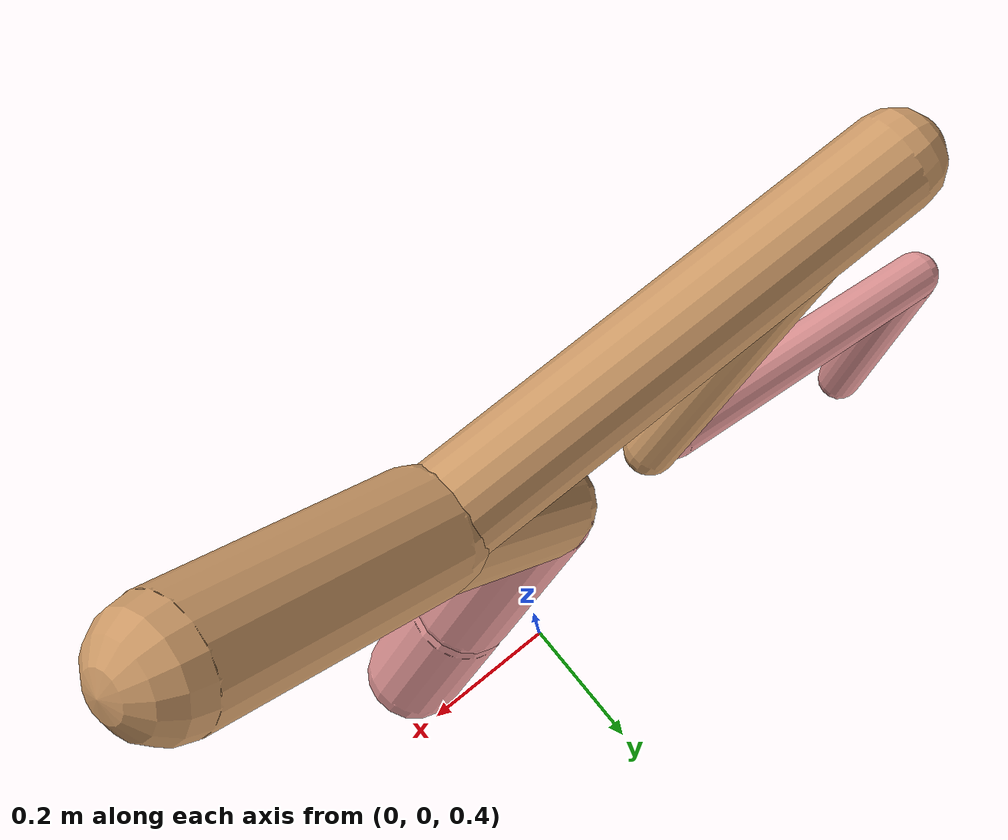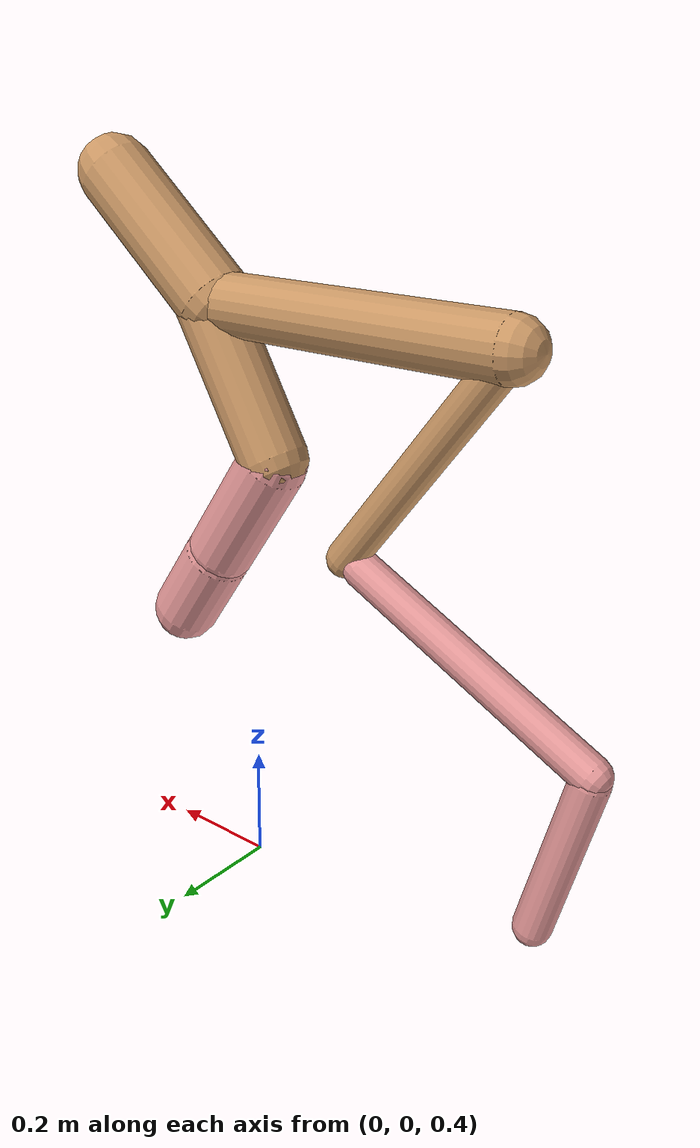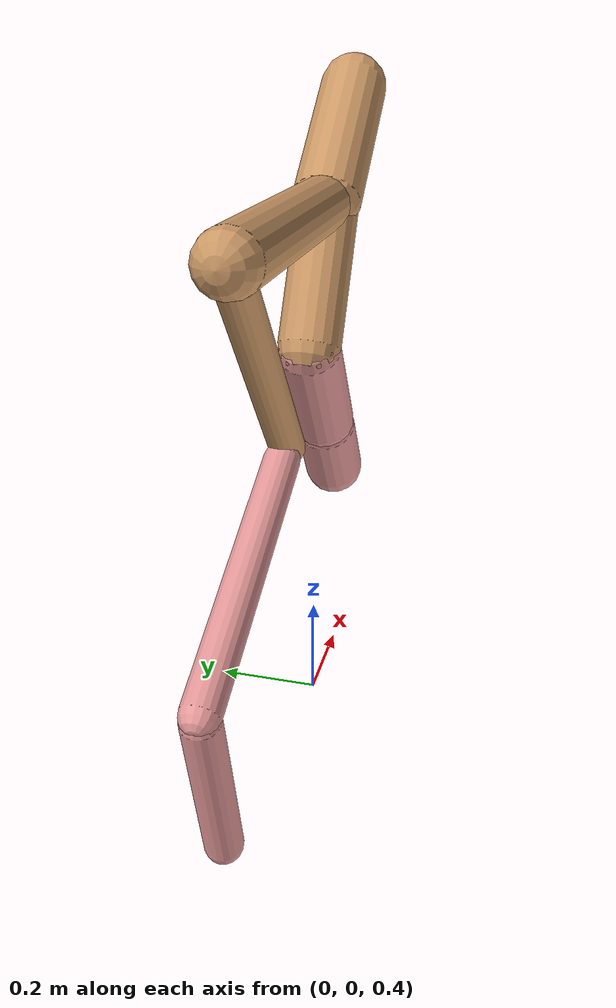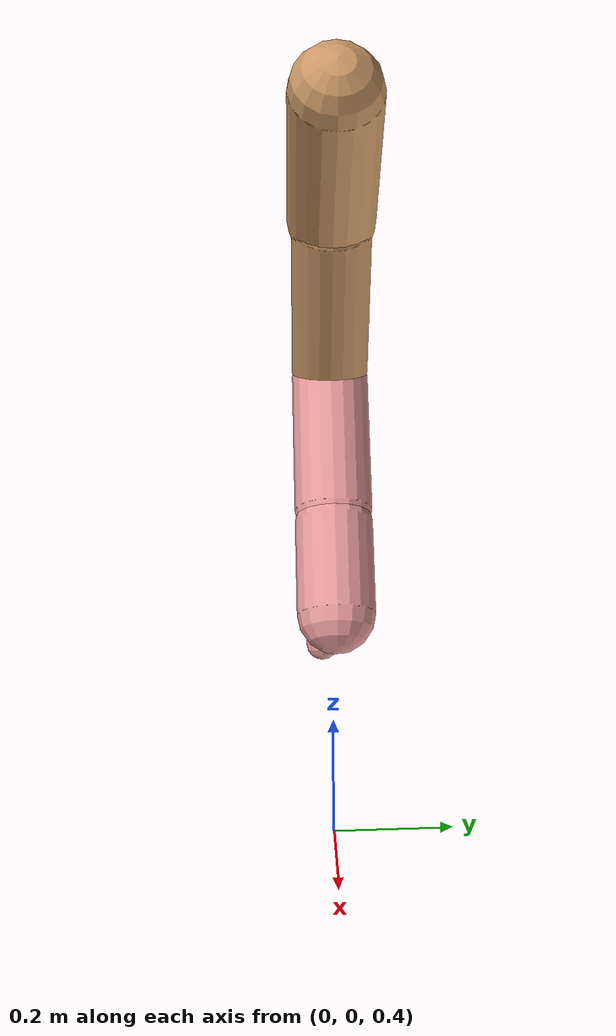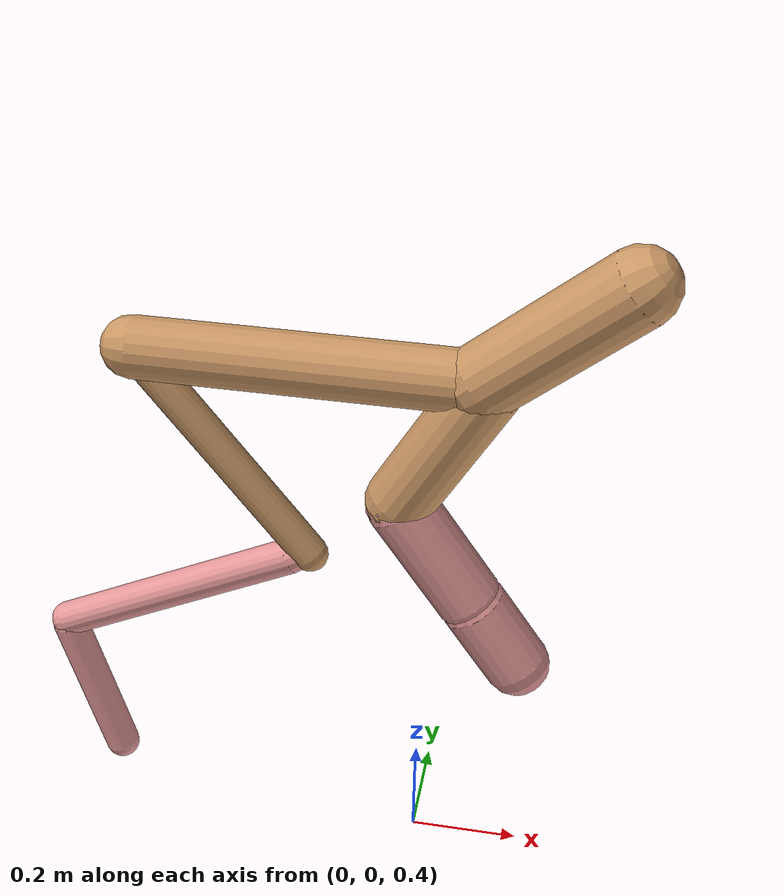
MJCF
<mujoco model="cheetah">
  <compiler angle="radian" coordinate="local" inertiafromgeom="true" settotalmass="14" />
  <default>
    <joint armature=".1" damping=".01" limited="true" solimplimit="0 .8 .03" solreflimit=".02 1" stiffness="8" />
    <geom conaffinity="0" condim="3" contype="1" friction="0.8 .1 .1" rgba="0.8 0.6 .4 1" solimp="0.0 0.8 0.01" solref="0.02 1" />
    <motor ctrllimited="true" ctrlrange="-1 1" />
  </default>
  <size nstack="300000" nuser_geom="1" />
  <option gravity="0 0 -9.81" timestep="0.01" />
  <worldbody>
    <body name="torso" pos="0.0 0.0 1.4245895612891757">
      <joint armature="0" axis="1 0 0" damping="0" limited="false" name="ignorex" pos="0 0 0" stiffness="0" type="slide" />
      <joint armature="0" axis="0 0 1" damping="0" limited="false" name="ignorez" pos="0 0 0" stiffness="0" type="slide" />
      <joint armature="0" axis="0 1 0" damping="0" limited="false" name="ignorey" pos="0 0 0" stiffness="0" type="hinge" />
      <geom fromto="-0.5 0.0 0.0 0.09673306936389614 0.0 0.0" name="torso" size="0.053403625422340666" type="capsule" />
      <geom axisangle="0 1 0 .87" name="head" pos="0.19673306936389612 0.0 0.1" size="0.0657930593033502 0.15" type="capsule" />

      <body name="bthigh" pos="-.5 0 0">
        <joint axis="0 1 0" damping="6" name="bthigh" pos="0 0 0" range="-.52 1.05" stiffness="240" type="hinge" />
        <geom axisangle="0 1 0 -3.8" name="bthigh" pos="0.1542877607152698 0.0 -0.20057408892985076" size="0.0322 0.23403854778553432" type="capsule" />
        <body name="bshin" pos="0.26857552143053964 0.0 -0.3911481778597015">
          <joint axis="0 1 0" damping="4.5" name="bshin" pos="0 0 0" range="-.785 .785" stiffness="180" type="hinge" />
          <geom axisangle="0 1 0 -2.03" name="bshin" pos="-0.2223846532964075 0.0 -0.11119232664820375" rgba="0.9 0.6 0.6 1" size="0.0322 0.24210884253675966" type="capsule" />
          <body name="bfoot" pos="-0.444769306592815 0.0 -0.2223846532964075">
            <joint axis="0 1 0" damping="3" name="bfoot" pos="0 0 0" range="-.4 .785" stiffness="120" type="hinge" />
            <geom axisangle="0 1 0 -.27" name="bfoot" pos="0.047054967821352135 0.0 -0.15214439595570525" rgba="0.9 0.6 0.6 1" size="0.0322 0.15172154132303606" type="capsule" />
            <inertial mass="10" />
          </body>
        </body>
      </body>
      <body name="fthigh" pos="0.09673306936389614 0.0 0.0">
        <joint axis="0 1 0" damping="4.5" name="fthigh" pos="0 0 0" range="-1.5 0.8" stiffness="180" type="hinge" />
        <geom axisangle="0 1 0 .52" name="fthigh" pos="-0.07380015803237248 0.0 -0.12651455662692423" size="0.05957419881046721 0.14054192608797036" type="capsule" />
        <body name="fshin" pos="-0.14760031606474497 0.0 -0.25302911325384847">
          <joint axis="0 1 0" damping="3" name="fshin" pos="0 0 0" range="-1.2 1.1" stiffness="120" type="hinge" />
          <geom axisangle="0 1 0 -.6" name="fshin" pos="0.06851930080544129 0.0 -0.09487287803830333" rgba="0.9 0.6 0.6 1" size="0.05957419881046721 0.11201085838590118" type="capsule" />
          <body name="ffoot" pos="0.13703860161088258 0.0 -0.18974575607660665">
            <joint axis="0 1 0" damping="1.5" name="ffoot" pos="0 0 0" range="-3.1 -0.3" stiffness="60" type="hinge" />
            <geom axisangle="0 1 0 -.6" name="ffoot" pos="0.047146501992208045 0.0 -0.0733390030989903" rgba="0.9 0.6 0.6 1" size="0.05957419881046721 0.0739694347831423" type="capsule" />
            <inertial mass="10" />
          </body>
        </body>
      </body>
    </body>
  </worldbody>
  <actuator>
    <motor gear="120" joint="bthigh" name="bthigh" />
    <motor gear="90" joint="bshin" name="bshin" />
    <motor gear="60" joint="bfoot" name="bfoot" />
    <motor gear="120" joint="fthigh" name="fthigh" />
    <motor gear="60" joint="fshin" name="fshin" />
    <motor gear="30" joint="ffoot" name="ffoot" />
  </actuator>
</mujoco>
